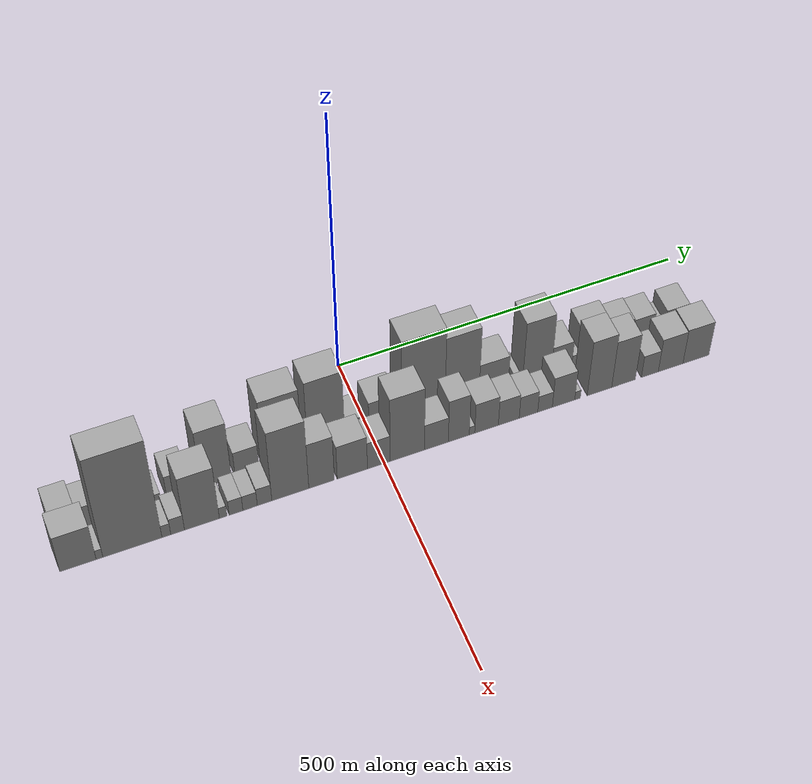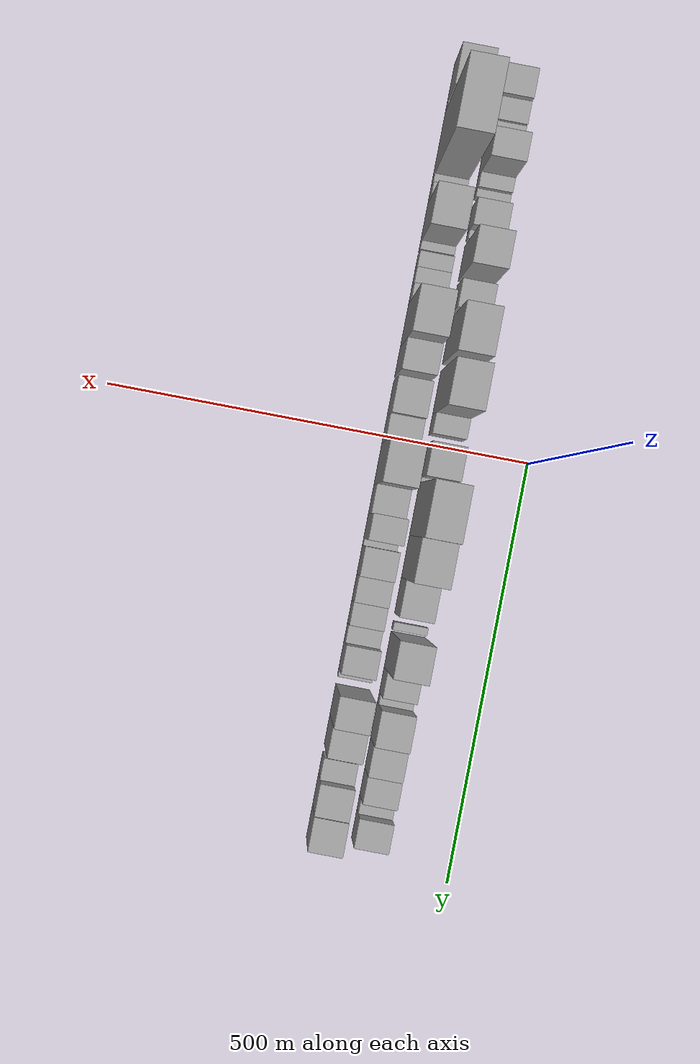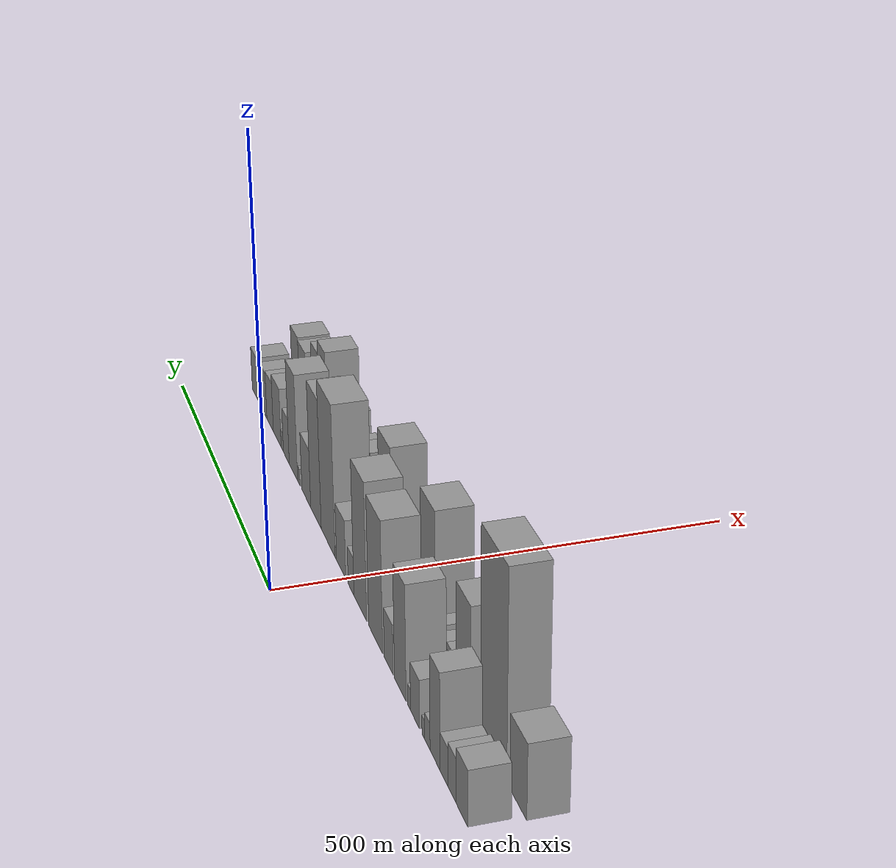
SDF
<sdf version="1.6">
 <world name="default">
  <scene>
   <sky><clouds><speed>12</speed></clouds></sky>
   <ambient>0.4 0.4 0.4 1</ambient>
   <background>0.7 0.7 0.7 1</background>
   <shadows>1</shadows>
  </scene>
  <gravity>0 0 -9.8066</gravity>
  <magnetic_field>6e-06 2.3e-05 -4.2e-05</magnetic_field>
  <physics default="0" name="default_physics" type="ode">
   <ode>
    <solver>
     <type>quick</type>
     <iters>10</iters>
     <sor>1.0</sor>
     <use_dynamic_moi_rescaling>0</use_dynamic_moi_rescaling>
    </solver>
    <constraints>
     <cfm>0</cfm>
     <erp>0.2</erp>
     <contact_max_correcting_vel>100</contact_max_correcting_vel>
     <contact_surface_layer>0.001</contact_surface_layer>
    </constraints>
   </ode>
   <max_step_size>0.004</max_step_size>
   <real_time_factor>1</real_time_factor>
   <real_time_update_rate>250</real_time_update_rate>
  </physics>
  <light name="sun" type="directional">
   <pose>0 0 10 0 0 0</pose>
   <diffuse>0.8 0.8 0.8 1</diffuse>
   <specular>0.2 0.2 0.2 1</specular>
   <attenuation>
    <range>1000</range>
    <constant>0.9</constant>
    <linear>0.01</linear>
    <quadratic>0.001</quadratic>
   </attenuation>
   <direction>-0.5 0.1 -0.9</direction>
  </light>
  <model name="building_1">
   <static>1</static>
   <pose>100.0000 -420.6993 0 0.000000 0.000000 0.000000</pose>
   <link name="link">
    <pose>0 0 30.00 0 0 0</pose>
    <collision name="collision"><geometry><box><size>40.0000 34.6014 60.0000</size></box></geometry></collision>
    <visual name="visual">
     <cast_shadows>0</cast_shadows>
     <geometry><box><size>40.0000 34.6014 60.0000</size></box></geometry>
     <material>
      <script>
       <uri>model://grey_wall/materials/scripts</uri>
       <uri>model://grey_wall/materials/textures</uri>
       <name>vrc/grey_wall</name>
      </script>
     </material>
    </visual>
   </link>
  </model>
  <model name="building_2">
   <static>1</static>
   <pose>100.0000 -389.9462 0 0.000000 0.000000 0.000000</pose>
   <link name="link">
    <pose>0 0 24.00 0 0 0</pose>
    <collision name="collision"><geometry><box><size>40.0000 26.9047 48.0000</size></box></geometry></collision>
    <visual name="visual">
     <cast_shadows>0</cast_shadows>
     <geometry><box><size>40.0000 26.9047 48.0000</size></box></geometry>
     <material>
      <script>
       <uri>model://grey_wall/materials/scripts</uri>
       <uri>model://grey_wall/materials/textures</uri>
       <name>vrc/grey_wall</name>
      </script>
     </material>
    </visual>
   </link>
  </model>
  <model name="building_3">
   <static>1</static>
   <pose>100.0000 -364.1504 0 0.000000 0.000000 0.000000</pose>
   <link name="link">
    <pose>0 0 21.00 0 0 0</pose>
    <collision name="collision"><geometry><box><size>40.0000 24.6869 42.0000</size></box></geometry></collision>
    <visual name="visual">
     <cast_shadows>0</cast_shadows>
     <geometry><box><size>40.0000 24.6869 42.0000</size></box></geometry>
     <material>
      <script>
       <uri>model://grey_wall/materials/scripts</uri>
       <uri>model://grey_wall/materials/textures</uri>
       <name>vrc/grey_wall</name>
      </script>
     </material>
    </visual>
   </link>
  </model>
  <model name="building_4">
   <static>1</static>
   <pose>100.0000 -335.4074 0 0.000000 0.000000 0.000000</pose>
   <link name="link">
    <pose>0 0 52.50 0 0 0</pose>
    <collision name="collision"><geometry><box><size>40.0000 32.7992 105.0000</size></box></geometry></collision>
    <visual name="visual">
     <cast_shadows>0</cast_shadows>
     <geometry><box><size>40.0000 32.7992 105.0000</size></box></geometry>
     <material>
      <script>
       <uri>model://grey_wall/materials/scripts</uri>
       <uri>model://grey_wall/materials/textures</uri>
       <name>vrc/grey_wall</name>
      </script>
     </material>
    </visual>
   </link>
  </model>
  <model name="building_5">
   <static>1</static>
   <pose>100.0000 -310.2377 0 0.000000 0.000000 0.000000</pose>
   <link name="link">
    <pose>0 0 15.00 0 0 0</pose>
    <collision name="collision"><geometry><box><size>40.0000 17.5402 30.0000</size></box></geometry></collision>
    <visual name="visual">
     <cast_shadows>0</cast_shadows>
     <geometry><box><size>40.0000 17.5402 30.0000</size></box></geometry>
     <material>
      <script>
       <uri>model://grey_wall/materials/scripts</uri>
       <uri>model://grey_wall/materials/textures</uri>
       <name>vrc/grey_wall</name>
      </script>
     </material>
    </visual>
   </link>
  </model>
  <model name="building_6">
   <static>1</static>
   <pose>100.0000 -296.6024 0 0.000000 0.000000 0.000000</pose>
   <link name="link">
    <pose>0 0 10.50 0 0 0</pose>
    <collision name="collision"><geometry><box><size>40.0000 9.7303 21.0000</size></box></geometry></collision>
    <visual name="visual">
     <cast_shadows>0</cast_shadows>
     <geometry><box><size>40.0000 9.7303 21.0000</size></box></geometry>
     <material>
      <script>
       <uri>model://grey_wall/materials/scripts</uri>
       <uri>model://grey_wall/materials/textures</uri>
       <name>vrc/grey_wall</name>
      </script>
     </material>
    </visual>
   </link>
  </model>
  <model name="building_7">
   <static>1</static>
   <pose>100.0000 -267.9709 0 0.000000 0.000000 0.000000</pose>
   <link name="link">
    <pose>0 0 27.00 0 0 0</pose>
    <collision name="collision"><geometry><box><size>40.0000 31.5327 54.0000</size></box></geometry></collision>
    <visual name="visual">
     <cast_shadows>0</cast_shadows>
     <geometry><box><size>40.0000 31.5327 54.0000</size></box></geometry>
     <material>
      <script>
       <uri>model://grey_wall/materials/scripts</uri>
       <uri>model://grey_wall/materials/textures</uri>
       <name>vrc/grey_wall</name>
      </script>
     </material>
    </visual>
   </link>
  </model>
  <model name="building_8">
   <static>1</static>
   <pose>100.0000 -247.0384 0 0.000000 0.000000 0.000000</pose>
   <link name="link">
    <pose>0 0 12.00 0 0 0</pose>
    <collision name="collision"><geometry><box><size>40.0000 10.3322 24.0000</size></box></geometry></collision>
    <visual name="visual">
     <cast_shadows>0</cast_shadows>
     <geometry><box><size>40.0000 10.3322 24.0000</size></box></geometry>
     <material>
      <script>
       <uri>model://grey_wall/materials/scripts</uri>
       <uri>model://grey_wall/materials/textures</uri>
       <name>vrc/grey_wall</name>
      </script>
     </material>
    </visual>
   </link>
  </model>
  <model name="building_9">
   <static>1</static>
   <pose>100.0000 -215.8633 0 0.000000 0.000000 0.000000</pose>
   <link name="link">
    <pose>0 0 64.50 0 0 0</pose>
    <collision name="collision"><geometry><box><size>40.0000 42.0181 129.0000</size></box></geometry></collision>
    <visual name="visual">
     <cast_shadows>0</cast_shadows>
     <geometry><box><size>40.0000 42.0181 129.0000</size></box></geometry>
     <material>
      <script>
       <uri>model://grey_wall/materials/scripts</uri>
       <uri>model://grey_wall/materials/textures</uri>
       <name>vrc/grey_wall</name>
      </script>
     </material>
    </visual>
   </link>
  </model>
  <model name="building_10">
   <static>1</static>
   <pose>100.0000 -173.1495 0 0.000000 0.000000 0.000000</pose>
   <link name="link">
    <pose>0 0 28.50 0 0 0</pose>
    <collision name="collision"><geometry><box><size>40.0000 33.4096 57.0000</size></box></geometry></collision>
    <visual name="visual">
     <cast_shadows>0</cast_shadows>
     <geometry><box><size>40.0000 33.4096 57.0000</size></box></geometry>
     <material>
      <script>
       <uri>model://grey_wall/materials/scripts</uri>
       <uri>model://grey_wall/materials/textures</uri>
       <name>vrc/grey_wall</name>
      </script>
     </material>
    </visual>
   </link>
  </model>
  <model name="building_11">
   <static>1</static>
   <pose>100.0000 -123.2199 0 0.000000 0.000000 0.000000</pose>
   <link name="link">
    <pose>0 0 75.00 0 0 0</pose>
    <collision name="collision"><geometry><box><size>40.0000 54.4495 150.0000</size></box></geometry></collision>
    <visual name="visual">
     <cast_shadows>0</cast_shadows>
     <geometry><box><size>40.0000 54.4495 150.0000</size></box></geometry>
     <material>
      <script>
       <uri>model://grey_wall/materials/scripts</uri>
       <uri>model://grey_wall/materials/textures</uri>
       <name>vrc/grey_wall</name>
      </script>
     </material>
    </visual>
   </link>
  </model>
  <model name="building_12">
   <static>1</static>
   <pose>100.0000 -61.9617 0 0.000000 0.000000 0.000000</pose>
   <link name="link">
    <pose>0 0 79.50 0 0 0</pose>
    <collision name="collision"><geometry><box><size>40.0000 52.0667 159.0000</size></box></geometry></collision>
    <visual name="visual">
     <cast_shadows>0</cast_shadows>
     <geometry><box><size>40.0000 52.0667 159.0000</size></box></geometry>
     <material>
      <script>
       <uri>model://grey_wall/materials/scripts</uri>
       <uri>model://grey_wall/materials/textures</uri>
       <name>vrc/grey_wall</name>
      </script>
     </material>
    </visual>
   </link>
  </model>
  <model name="building_13">
   <static>1</static>
   <pose>100.0000 -23.7251 0 0.000000 0.000000 0.000000</pose>
   <link name="link">
    <pose>0 0 22.50 0 0 0</pose>
    <collision name="collision"><geometry><box><size>40.0000 24.4066 45.0000</size></box></geometry></collision>
    <visual name="visual">
     <cast_shadows>0</cast_shadows>
     <geometry><box><size>40.0000 24.4066 45.0000</size></box></geometry>
     <material>
      <script>
       <uri>model://grey_wall/materials/scripts</uri>
       <uri>model://grey_wall/materials/textures</uri>
       <name>vrc/grey_wall</name>
      </script>
     </material>
    </visual>
   </link>
  </model>
  <model name="building_14">
   <static>1</static>
   <pose>100.0000 18.4585 0 0.000000 0.000000 0.000000</pose>
   <link name="link">
    <pose>0 0 34.50 0 0 0</pose>
    <collision name="collision"><geometry><box><size>40.0000 39.9605 69.0000</size></box></geometry></collision>
    <visual name="visual">
     <cast_shadows>0</cast_shadows>
     <geometry><box><size>40.0000 39.9605 69.0000</size></box></geometry>
     <material>
      <script>
       <uri>model://grey_wall/materials/scripts</uri>
       <uri>model://grey_wall/materials/textures</uri>
       <name>vrc/grey_wall</name>
      </script>
     </material>
    </visual>
   </link>
  </model>
  <model name="building_15">
   <static>1</static>
   <pose>100.0000 41.6626 0 0.000000 0.000000 0.000000</pose>
   <link name="link">
    <pose>0 0 7.50 0 0 0</pose>
    <collision name="collision"><geometry><box><size>40.0000 6.4477 15.0000</size></box></geometry></collision>
    <visual name="visual">
     <cast_shadows>0</cast_shadows>
     <geometry><box><size>40.0000 6.4477 15.0000</size></box></geometry>
     <material>
      <script>
       <uri>model://grey_wall/materials/scripts</uri>
       <uri>model://grey_wall/materials/textures</uri>
       <name>vrc/grey_wall</name>
      </script>
     </material>
    </visual>
   </link>
  </model>
  <model name="building_16">
   <static>1</static>
   <pose>100.0000 76.2940 0 0.000000 0.000000 0.000000</pose>
   <link name="link">
    <pose>0 0 90.00 0 0 0</pose>
    <collision name="collision"><geometry><box><size>40.0000 62.8152 180.0000</size></box></geometry></collision>
    <visual name="visual">
     <cast_shadows>0</cast_shadows>
     <geometry><box><size>40.0000 62.8152 180.0000</size></box></geometry>
     <material>
      <script>
       <uri>model://grey_wall/materials/scripts</uri>
       <uri>model://grey_wall/materials/textures</uri>
       <name>vrc/grey_wall</name>
      </script>
     </material>
    </visual>
   </link>
  </model>
  <model name="building_17">
   <static>1</static>
   <pose>100.0000 132.5691 0 0.000000 0.000000 0.000000</pose>
   <link name="link">
    <pose>0 0 78.00 0 0 0</pose>
    <collision name="collision"><geometry><box><size>40.0000 49.7349 156.0000</size></box></geometry></collision>
    <visual name="visual">
     <cast_shadows>0</cast_shadows>
     <geometry><box><size>40.0000 49.7349 156.0000</size></box></geometry>
     <material>
      <script>
       <uri>model://grey_wall/materials/scripts</uri>
       <uri>model://grey_wall/materials/textures</uri>
       <name>vrc/grey_wall</name>
      </script>
     </material>
    </visual>
   </link>
  </model>
  <model name="building_18">
   <static>1</static>
   <pose>100.0000 178.9139 0 0.000000 0.000000 0.000000</pose>
   <link name="link">
    <pose>0 0 36.00 0 0 0</pose>
    <collision name="collision"><geometry><box><size>40.0000 42.9548 72.0000</size></box></geometry></collision>
    <visual name="visual">
     <cast_shadows>0</cast_shadows>
     <geometry><box><size>40.0000 42.9548 72.0000</size></box></geometry>
     <material>
      <script>
       <uri>model://grey_wall/materials/scripts</uri>
       <uri>model://grey_wall/materials/textures</uri>
       <name>vrc/grey_wall</name>
      </script>
     </material>
    </visual>
   </link>
  </model>
  <model name="building_19">
   <static>1</static>
   <pose>100.0000 214.0822 0 0.000000 0.000000 0.000000</pose>
   <link name="link">
    <pose>0 0 10.50 0 0 0</pose>
    <collision name="collision"><geometry><box><size>40.0000 9.3818 21.0000</size></box></geometry></collision>
    <visual name="visual">
     <cast_shadows>0</cast_shadows>
     <geometry><box><size>40.0000 9.3818 21.0000</size></box></geometry>
     <material>
      <script>
       <uri>model://grey_wall/materials/scripts</uri>
       <uri>model://grey_wall/materials/textures</uri>
       <name>vrc/grey_wall</name>
      </script>
     </material>
    </visual>
   </link>
  </model>
  <model name="building_20">
   <static>1</static>
   <pose>100.0000 243.0363 0 0.000000 0.000000 0.000000</pose>
   <link name="link">
    <pose>0 0 66.00 0 0 0</pose>
    <collision name="collision"><geometry><box><size>40.0000 42.5264 132.0000</size></box></geometry></collision>
    <visual name="visual">
     <cast_shadows>0</cast_shadows>
     <geometry><box><size>40.0000 42.5264 132.0000</size></box></geometry>
     <material>
      <script>
       <uri>model://grey_wall/materials/scripts</uri>
       <uri>model://grey_wall/materials/textures</uri>
       <name>vrc/grey_wall</name>
      </script>
     </material>
    </visual>
   </link>
  </model>
  <model name="building_21">
   <static>1</static>
   <pose>100.0000 279.5815 0 0.000000 0.000000 0.000000</pose>
   <link name="link">
    <pose>0 0 28.50 0 0 0</pose>
    <collision name="collision"><geometry><box><size>40.0000 30.5641 57.0000</size></box></geometry></collision>
    <visual name="visual">
     <cast_shadows>0</cast_shadows>
     <geometry><box><size>40.0000 30.5641 57.0000</size></box></geometry>
     <material>
      <script>
       <uri>model://grey_wall/materials/scripts</uri>
       <uri>model://grey_wall/materials/textures</uri>
       <name>vrc/grey_wall</name>
      </script>
     </material>
    </visual>
   </link>
  </model>
  <model name="building_22">
   <static>1</static>
   <pose>100.0000 300.7286 0 0.000000 0.000000 0.000000</pose>
   <link name="link">
    <pose>0 0 12.00 0 0 0</pose>
    <collision name="collision"><geometry><box><size>40.0000 11.7300 24.0000</size></box></geometry></collision>
    <visual name="visual">
     <cast_shadows>0</cast_shadows>
     <geometry><box><size>40.0000 11.7300 24.0000</size></box></geometry>
     <material>
      <script>
       <uri>model://grey_wall/materials/scripts</uri>
       <uri>model://grey_wall/materials/textures</uri>
       <name>vrc/grey_wall</name>
      </script>
     </material>
    </visual>
   </link>
  </model>
  <model name="building_23">
   <static>1</static>
   <pose>100.0000 327.6474 0 0.000000 0.000000 0.000000</pose>
   <link name="link">
    <pose>0 0 37.50 0 0 0</pose>
    <collision name="collision"><geometry><box><size>40.0000 42.1075 75.0000</size></box></geometry></collision>
    <visual name="visual">
     <cast_shadows>0</cast_shadows>
     <geometry><box><size>40.0000 42.1075 75.0000</size></box></geometry>
     <material>
      <script>
       <uri>model://grey_wall/materials/scripts</uri>
       <uri>model://grey_wall/materials/textures</uri>
       <name>vrc/grey_wall</name>
      </script>
     </material>
    </visual>
   </link>
  </model>
  <model name="building_24">
   <static>1</static>
   <pose>100.0000 366.6639 0 0.000000 0.000000 0.000000</pose>
   <link name="link">
    <pose>0 0 31.50 0 0 0</pose>
    <collision name="collision"><geometry><box><size>40.0000 35.9255 63.0000</size></box></geometry></collision>
    <visual name="visual">
     <cast_shadows>0</cast_shadows>
     <geometry><box><size>40.0000 35.9255 63.0000</size></box></geometry>
     <material>
      <script>
       <uri>model://grey_wall/materials/scripts</uri>
       <uri>model://grey_wall/materials/textures</uri>
       <name>vrc/grey_wall</name>
      </script>
     </material>
    </visual>
   </link>
  </model>
  <model name="building_25">
   <static>1</static>
   <pose>100.0000 400.5764 0 0.000000 0.000000 0.000000</pose>
   <link name="link">
    <pose>0 0 30.00 0 0 0</pose>
    <collision name="collision"><geometry><box><size>40.0000 31.8995 60.0000</size></box></geometry></collision>
    <visual name="visual">
     <cast_shadows>0</cast_shadows>
     <geometry><box><size>40.0000 31.8995 60.0000</size></box></geometry>
     <material>
      <script>
       <uri>model://grey_wall/materials/scripts</uri>
       <uri>model://grey_wall/materials/textures</uri>
       <name>vrc/grey_wall</name>
      </script>
     </material>
    </visual>
   </link>
  </model>
  <model name="building_26">
   <static>1</static>
   <pose>100.0000 425.1139 0 0.000000 0.000000 0.000000</pose>
   <link name="link">
    <pose>0 0 15.00 0 0 0</pose>
    <collision name="collision"><geometry><box><size>40.0000 17.1756 30.0000</size></box></geometry></collision>
    <visual name="visual">
     <cast_shadows>0</cast_shadows>
     <geometry><box><size>40.0000 17.1756 30.0000</size></box></geometry>
     <material>
      <script>
       <uri>model://grey_wall/materials/scripts</uri>
       <uri>model://grey_wall/materials/textures</uri>
       <name>vrc/grey_wall</name>
      </script>
     </material>
    </visual>
   </link>
  </model>
  <model name="building_27">
   <static>1</static>
   <pose>100.0000 450.7416 0 0.000000 0.000000 0.000000</pose>
   <link name="link">
    <pose>0 0 28.50 0 0 0</pose>
    <collision name="collision"><geometry><box><size>40.0000 34.0799 57.0000</size></box></geometry></collision>
    <visual name="visual">
     <cast_shadows>0</cast_shadows>
     <geometry><box><size>40.0000 34.0799 57.0000</size></box></geometry>
     <material>
      <script>
       <uri>model://grey_wall/materials/scripts</uri>
       <uri>model://grey_wall/materials/textures</uri>
       <name>vrc/grey_wall</name>
      </script>
     </material>
    </visual>
   </link>
  </model>
  <model name="building_28">
   <static>1</static>
   <pose>152.0000 -419.8941 0 0.000000 0.000000 0.000000</pose>
   <link name="link">
    <pose>0 0 40.50 0 0 0</pose>
    <collision name="collision"><geometry><box><size>40.0000 48.2119 81.0000</size></box></geometry></collision>
    <visual name="visual">
     <cast_shadows>0</cast_shadows>
     <geometry><box><size>40.0000 48.2119 81.0000</size></box></geometry>
     <material>
      <script>
       <uri>model://grey_wall/materials/scripts</uri>
       <uri>model://grey_wall/materials/textures</uri>
       <name>vrc/grey_wall</name>
      </script>
     </material>
    </visual>
   </link>
  </model>
  <model name="building_29">
   <static>1</static>
   <pose>152.0000 -391.3192 0 0.000000 0.000000 0.000000</pose>
   <link name="link">
    <pose>0 0 10.50 0 0 0</pose>
    <collision name="collision"><geometry><box><size>40.0000 8.9380 21.0000</size></box></geometry></collision>
    <visual name="visual">
     <cast_shadows>0</cast_shadows>
     <geometry><box><size>40.0000 8.9380 21.0000</size></box></geometry>
     <material>
      <script>
       <uri>model://grey_wall/materials/scripts</uri>
       <uri>model://grey_wall/materials/textures</uri>
       <name>vrc/grey_wall</name>
      </script>
     </material>
    </visual>
   </link>
  </model>
  <model name="building_30">
   <static>1</static>
   <pose>152.0000 -347.2397 0 0.000000 0.000000 0.000000</pose>
   <link name="link">
    <pose>0 0 112.50 0 0 0</pose>
    <collision name="collision"><geometry><box><size>40.0000 79.2209 225.0000</size></box></geometry></collision>
    <visual name="visual">
     <cast_shadows>0</cast_shadows>
     <geometry><box><size>40.0000 79.2209 225.0000</size></box></geometry>
     <material>
      <script>
       <uri>model://grey_wall/materials/scripts</uri>
       <uri>model://grey_wall/materials/textures</uri>
       <name>vrc/grey_wall</name>
      </script>
     </material>
    </visual>
   </link>
  </model>
  <model name="building_31">
   <static>1</static>
   <pose>152.0000 -301.6274 0 0.000000 0.000000 0.000000</pose>
   <link name="link">
    <pose>0 0 13.50 0 0 0</pose>
    <collision name="collision"><geometry><box><size>40.0000 12.0037 27.0000</size></box></geometry></collision>
    <visual name="visual">
     <cast_shadows>0</cast_shadows>
     <geometry><box><size>40.0000 12.0037 27.0000</size></box></geometry>
     <material>
      <script>
       <uri>model://grey_wall/materials/scripts</uri>
       <uri>model://grey_wall/materials/textures</uri>
       <name>vrc/grey_wall</name>
      </script>
     </material>
    </visual>
   </link>
  </model>
  <model name="building_32">
   <static>1</static>
   <pose>152.0000 -286.3250 0 0.000000 0.000000 0.000000</pose>
   <link name="link">
    <pose>0 0 18.00 0 0 0</pose>
    <collision name="collision"><geometry><box><size>40.0000 18.6010 36.0000</size></box></geometry></collision>
    <visual name="visual">
     <cast_shadows>0</cast_shadows>
     <geometry><box><size>40.0000 18.6010 36.0000</size></box></geometry>
     <material>
      <script>
       <uri>model://grey_wall/materials/scripts</uri>
       <uri>model://grey_wall/materials/textures</uri>
       <name>vrc/grey_wall</name>
      </script>
     </material>
    </visual>
   </link>
  </model>
  <model name="building_33">
   <static>1</static>
   <pose>152.0000 -253.3515 0 0.000000 0.000000 0.000000</pose>
   <link name="link">
    <pose>0 0 60.00 0 0 0</pose>
    <collision name="collision"><geometry><box><size>40.0000 47.3461 120.0000</size></box></geometry></collision>
    <visual name="visual">
     <cast_shadows>0</cast_shadows>
     <geometry><box><size>40.0000 47.3461 120.0000</size></box></geometry>
     <material>
      <script>
       <uri>model://grey_wall/materials/scripts</uri>
       <uri>model://grey_wall/materials/textures</uri>
       <name>vrc/grey_wall</name>
      </script>
     </material>
    </visual>
   </link>
  </model>
  <model name="building_34">
   <static>1</static>
   <pose>152.0000 -224.4134 0 0.000000 0.000000 0.000000</pose>
   <link name="link">
    <pose>0 0 12.00 0 0 0</pose>
    <collision name="collision"><geometry><box><size>40.0000 10.5301 24.0000</size></box></geometry></collision>
    <visual name="visual">
     <cast_shadows>0</cast_shadows>
     <geometry><box><size>40.0000 10.5301 24.0000</size></box></geometry>
     <material>
      <script>
       <uri>model://grey_wall/materials/scripts</uri>
       <uri>model://grey_wall/materials/textures</uri>
       <name>vrc/grey_wall</name>
      </script>
     </material>
    </visual>
   </link>
  </model>
  <model name="building_35">
   <static>1</static>
   <pose>152.0000 -206.7561 0 0.000000 0.000000 0.000000</pose>
   <link name="link">
    <pose>0 0 16.50 0 0 0</pose>
    <collision name="collision"><geometry><box><size>40.0000 18.7844 33.0000</size></box></geometry></collision>
    <visual name="visual">
     <cast_shadows>0</cast_shadows>
     <geometry><box><size>40.0000 18.7844 33.0000</size></box></geometry>
     <material>
      <script>
       <uri>model://grey_wall/materials/scripts</uri>
       <uri>model://grey_wall/materials/textures</uri>
       <name>vrc/grey_wall</name>
      </script>
     </material>
    </visual>
   </link>
  </model>
  <model name="building_36">
   <static>1</static>
   <pose>152.0000 -187.4967 0 0.000000 0.000000 0.000000</pose>
   <link name="link">
    <pose>0 0 16.50 0 0 0</pose>
    <collision name="collision"><geometry><box><size>40.0000 19.7345 33.0000</size></box></geometry></collision>
    <visual name="visual">
     <cast_shadows>0</cast_shadows>
     <geometry><box><size>40.0000 19.7345 33.0000</size></box></geometry>
     <material>
      <script>
       <uri>model://grey_wall/materials/scripts</uri>
       <uri>model://grey_wall/materials/textures</uri>
       <name>vrc/grey_wall</name>
      </script>
     </material>
    </visual>
   </link>
  </model>
  <model name="building_37">
   <static>1</static>
   <pose>152.0000 -167.5568 0 0.000000 0.000000 0.000000</pose>
   <link name="link">
    <pose>0 0 19.50 0 0 0</pose>
    <collision name="collision"><geometry><box><size>40.0000 20.1453 39.0000</size></box></geometry></collision>
    <visual name="visual">
     <cast_shadows>0</cast_shadows>
     <geometry><box><size>40.0000 20.1453 39.0000</size></box></geometry>
     <material>
      <script>
       <uri>model://grey_wall/materials/scripts</uri>
       <uri>model://grey_wall/materials/textures</uri>
       <name>vrc/grey_wall</name>
      </script>
     </material>
    </visual>
   </link>
  </model>
  <model name="building_38">
   <static>1</static>
   <pose>152.0000 -131.8055 0 0.000000 0.000000 0.000000</pose>
   <link name="link">
    <pose>0 0 78.00 0 0 0</pose>
    <collision name="collision"><geometry><box><size>40.0000 51.3573 156.0000</size></box></geometry></collision>
    <visual name="visual">
     <cast_shadows>0</cast_shadows>
     <geometry><box><size>40.0000 51.3573 156.0000</size></box></geometry>
     <material>
      <script>
       <uri>model://grey_wall/materials/scripts</uri>
       <uri>model://grey_wall/materials/textures</uri>
       <name>vrc/grey_wall</name>
      </script>
     </material>
    </visual>
   </link>
  </model>
  <model name="building_39">
   <static>1</static>
   <pose>152.0000 -88.2568 0 0.000000 0.000000 0.000000</pose>
   <link name="link">
    <pose>0 0 51.00 0 0 0</pose>
    <collision name="collision"><geometry><box><size>40.0000 35.7400 102.0000</size></box></geometry></collision>
    <visual name="visual">
     <cast_shadows>0</cast_shadows>
     <geometry><box><size>40.0000 35.7400 102.0000</size></box></geometry>
     <material>
      <script>
       <uri>model://grey_wall/materials/scripts</uri>
       <uri>model://grey_wall/materials/textures</uri>
       <name>vrc/grey_wall</name>
      </script>
     </material>
    </visual>
   </link>
  </model>
  <model name="building_40">
   <static>1</static>
   <pose>152.0000 -45.1915 0 0.000000 0.000000 0.000000</pose>
   <link name="link">
    <pose>0 0 37.50 0 0 0</pose>
    <collision name="collision"><geometry><box><size>40.0000 42.3907 75.0000</size></box></geometry></collision>
    <visual name="visual">
     <cast_shadows>0</cast_shadows>
     <geometry><box><size>40.0000 42.3907 75.0000</size></box></geometry>
     <material>
      <script>
       <uri>model://grey_wall/materials/scripts</uri>
       <uri>model://grey_wall/materials/textures</uri>
       <name>vrc/grey_wall</name>
      </script>
     </material>
    </visual>
   </link>
  </model>
  <model name="building_41">
   <static>1</static>
   <pose>152.0000 -7.8814 0 0.000000 0.000000 0.000000</pose>
   <link name="link">
    <pose>0 0 30.00 0 0 0</pose>
    <collision name="collision"><geometry><box><size>40.0000 32.2295 60.0000</size></box></geometry></collision>
    <visual name="visual">
     <cast_shadows>0</cast_shadows>
     <geometry><box><size>40.0000 32.2295 60.0000</size></box></geometry>
     <material>
      <script>
       <uri>model://grey_wall/materials/scripts</uri>
       <uri>model://grey_wall/materials/textures</uri>
       <name>vrc/grey_wall</name>
      </script>
     </material>
    </visual>
   </link>
  </model>
  <model name="building_42">
   <static>1</static>
   <pose>152.0000 32.6572 0 0.000000 0.000000 0.000000</pose>
   <link name="link">
    <pose>0 0 70.50 0 0 0</pose>
    <collision name="collision"><geometry><box><size>40.0000 48.8478 141.0000</size></box></geometry></collision>
    <visual name="visual">
     <cast_shadows>0</cast_shadows>
     <geometry><box><size>40.0000 48.8478 141.0000</size></box></geometry>
     <material>
      <script>
       <uri>model://grey_wall/materials/scripts</uri>
       <uri>model://grey_wall/materials/textures</uri>
       <name>vrc/grey_wall</name>
      </script>
     </material>
    </visual>
   </link>
  </model>
  <model name="building_43">
   <static>1</static>
   <pose>152.0000 74.1489 0 0.000000 0.000000 0.000000</pose>
   <link name="link">
    <pose>0 0 28.50 0 0 0</pose>
    <collision name="collision"><geometry><box><size>40.0000 34.1357 57.0000</size></box></geometry></collision>
    <visual name="visual">
     <cast_shadows>0</cast_shadows>
     <geometry><box><size>40.0000 34.1357 57.0000</size></box></geometry>
     <material>
      <script>
       <uri>model://grey_wall/materials/scripts</uri>
       <uri>model://grey_wall/materials/textures</uri>
       <name>vrc/grey_wall</name>
      </script>
     </material>
    </visual>
   </link>
  </model>
  <model name="building_44">
   <static>1</static>
   <pose>152.0000 106.3500 0 0.000000 0.000000 0.000000</pose>
   <link name="link">
    <pose>0 0 46.50 0 0 0</pose>
    <collision name="collision"><geometry><box><size>40.0000 30.2664 93.0000</size></box></geometry></collision>
    <visual name="visual">
     <cast_shadows>0</cast_shadows>
     <geometry><box><size>40.0000 30.2664 93.0000</size></box></geometry>
     <material>
      <script>
       <uri>model://grey_wall/materials/scripts</uri>
       <uri>model://grey_wall/materials/textures</uri>
       <name>vrc/grey_wall</name>
      </script>
     </material>
    </visual>
   </link>
  </model>
  <model name="building_45">
   <static>1</static>
   <pose>152.0000 125.4410 0 0.000000 0.000000 0.000000</pose>
   <link name="link">
    <pose>0 0 9.00 0 0 0</pose>
    <collision name="collision"><geometry><box><size>40.0000 7.9155 18.0000</size></box></geometry></collision>
    <visual name="visual">
     <cast_shadows>0</cast_shadows>
     <geometry><box><size>40.0000 7.9155 18.0000</size></box></geometry>
     <material>
      <script>
       <uri>model://grey_wall/materials/scripts</uri>
       <uri>model://grey_wall/materials/textures</uri>
       <name>vrc/grey_wall</name>
      </script>
     </material>
    </visual>
   </link>
  </model>
  <model name="building_46">
   <static>1</static>
   <pose>152.0000 146.5405 0 0.000000 0.000000 0.000000</pose>
   <link name="link">
    <pose>0 0 33.00 0 0 0</pose>
    <collision name="collision"><geometry><box><size>40.0000 34.2835 66.0000</size></box></geometry></collision>
    <visual name="visual">
     <cast_shadows>0</cast_shadows>
     <geometry><box><size>40.0000 34.2835 66.0000</size></box></geometry>
     <material>
      <script>
       <uri>model://grey_wall/materials/scripts</uri>
       <uri>model://grey_wall/materials/textures</uri>
       <name>vrc/grey_wall</name>
      </script>
     </material>
    </visual>
   </link>
  </model>
  <model name="building_47">
   <static>1</static>
   <pose>152.0000 178.9067 0 0.000000 0.000000 0.000000</pose>
   <link name="link">
    <pose>0 0 27.00 0 0 0</pose>
    <collision name="collision"><geometry><box><size>40.0000 30.4488 54.0000</size></box></geometry></collision>
    <visual name="visual">
     <cast_shadows>0</cast_shadows>
     <geometry><box><size>40.0000 30.4488 54.0000</size></box></geometry>
     <material>
      <script>
       <uri>model://grey_wall/materials/scripts</uri>
       <uri>model://grey_wall/materials/textures</uri>
       <name>vrc/grey_wall</name>
      </script>
     </material>
    </visual>
   </link>
  </model>
  <model name="building_48">
   <static>1</static>
   <pose>152.0000 207.6680 0 0.000000 0.000000 0.000000</pose>
   <link name="link">
    <pose>0 0 24.00 0 0 0</pose>
    <collision name="collision"><geometry><box><size>40.0000 27.0739 48.0000</size></box></geometry></collision>
    <visual name="visual">
     <cast_shadows>0</cast_shadows>
     <geometry><box><size>40.0000 27.0739 48.0000</size></box></geometry>
     <material>
      <script>
       <uri>model://grey_wall/materials/scripts</uri>
       <uri>model://grey_wall/materials/textures</uri>
       <name>vrc/grey_wall</name>
      </script>
     </material>
    </visual>
   </link>
  </model>
  <model name="building_49">
   <static>1</static>
   <pose>152.0000 231.9488 0 0.000000 0.000000 0.000000</pose>
   <link name="link">
    <pose>0 0 18.00 0 0 0</pose>
    <collision name="collision"><geometry><box><size>40.0000 21.4876 36.0000</size></box></geometry></collision>
    <visual name="visual">
     <cast_shadows>0</cast_shadows>
     <geometry><box><size>40.0000 21.4876 36.0000</size></box></geometry>
     <material>
      <script>
       <uri>model://grey_wall/materials/scripts</uri>
       <uri>model://grey_wall/materials/textures</uri>
       <name>vrc/grey_wall</name>
      </script>
     </material>
    </visual>
   </link>
  </model>
  <model name="building_50">
   <static>1</static>
   <pose>152.0000 259.2955 0 0.000000 0.000000 0.000000</pose>
   <link name="link">
    <pose>0 0 33.00 0 0 0</pose>
    <collision name="collision"><geometry><box><size>40.0000 33.2060 66.0000</size></box></geometry></collision>
    <visual name="visual">
     <cast_shadows>0</cast_shadows>
     <geometry><box><size>40.0000 33.2060 66.0000</size></box></geometry>
     <material>
      <script>
       <uri>model://grey_wall/materials/scripts</uri>
       <uri>model://grey_wall/materials/textures</uri>
       <name>vrc/grey_wall</name>
      </script>
     </material>
    </visual>
   </link>
  </model>
  <model name="building_51">
   <static>1</static>
   <pose>152.0000 280.0718 0 0.000000 0.000000 0.000000</pose>
   <link name="link">
    <pose>0 0 9.00 0 0 0</pose>
    <collision name="collision"><geometry><box><size>40.0000 8.3467 18.0000</size></box></geometry></collision>
    <visual name="visual">
     <cast_shadows>0</cast_shadows>
     <geometry><box><size>40.0000 8.3467 18.0000</size></box></geometry>
     <material>
      <script>
       <uri>model://grey_wall/materials/scripts</uri>
       <uri>model://grey_wall/materials/textures</uri>
       <name>vrc/grey_wall</name>
      </script>
     </material>
    </visual>
   </link>
  </model>
  <model name="building_52">
   <static>1</static>
   <pose>152.0000 312.4818 0 0.000000 0.000000 0.000000</pose>
   <link name="link">
    <pose>0 0 60.00 0 0 0</pose>
    <collision name="collision"><geometry><box><size>40.0000 36.4732 120.0000</size></box></geometry></collision>
    <visual name="visual">
     <cast_shadows>0</cast_shadows>
     <geometry><box><size>40.0000 36.4732 120.0000</size></box></geometry>
     <material>
      <script>
       <uri>model://grey_wall/materials/scripts</uri>
       <uri>model://grey_wall/materials/textures</uri>
       <name>vrc/grey_wall</name>
      </script>
     </material>
    </visual>
   </link>
  </model>
  <model name="building_53">
   <static>1</static>
   <pose>152.0000 348.4297 0 0.000000 0.000000 0.000000</pose>
   <link name="link">
    <pose>0 0 51.00 0 0 0</pose>
    <collision name="collision"><geometry><box><size>40.0000 35.4226 102.0000</size></box></geometry></collision>
    <visual name="visual">
     <cast_shadows>0</cast_shadows>
     <geometry><box><size>40.0000 35.4226 102.0000</size></box></geometry>
     <material>
      <script>
       <uri>model://grey_wall/materials/scripts</uri>
       <uri>model://grey_wall/materials/textures</uri>
       <name>vrc/grey_wall</name>
      </script>
     </material>
    </visual>
   </link>
  </model>
  <model name="building_54">
   <static>1</static>
   <pose>152.0000 387.8915 0 0.000000 0.000000 0.000000</pose>
   <link name="link">
    <pose>0 0 24.00 0 0 0</pose>
    <collision name="collision"><geometry><box><size>40.0000 25.5009 48.0000</size></box></geometry></collision>
    <visual name="visual">
     <cast_shadows>0</cast_shadows>
     <geometry><box><size>40.0000 25.5009 48.0000</size></box></geometry>
     <material>
      <script>
       <uri>model://grey_wall/materials/scripts</uri>
       <uri>model://grey_wall/materials/textures</uri>
       <name>vrc/grey_wall</name>
      </script>
     </material>
    </visual>
   </link>
  </model>
  <model name="building_55">
   <static>1</static>
   <pose>152.0000 419.2807 0 0.000000 0.000000 0.000000</pose>
   <link name="link">
    <pose>0 0 36.00 0 0 0</pose>
    <collision name="collision"><geometry><box><size>40.0000 37.2776 72.0000</size></box></geometry></collision>
    <visual name="visual">
     <cast_shadows>0</cast_shadows>
     <geometry><box><size>40.0000 37.2776 72.0000</size></box></geometry>
     <material>
      <script>
       <uri>model://grey_wall/materials/scripts</uri>
       <uri>model://grey_wall/materials/textures</uri>
       <name>vrc/grey_wall</name>
      </script>
     </material>
    </visual>
   </link>
  </model>
  <model name="building_56">
   <static>1</static>
   <pose>152.0000 457.6937 0 0.000000 0.000000 0.000000</pose>
   <link name="link">
    <pose>0 0 37.50 0 0 0</pose>
    <collision name="collision"><geometry><box><size>40.0000 39.5482 75.0000</size></box></geometry></collision>
    <visual name="visual">
     <cast_shadows>0</cast_shadows>
     <geometry><box><size>40.0000 39.5482 75.0000</size></box></geometry>
     <material>
      <script>
       <uri>model://grey_wall/materials/scripts</uri>
       <uri>model://grey_wall/materials/textures</uri>
       <name>vrc/grey_wall</name>
      </script>
     </material>
    </visual>
   </link>
  </model>
 </world>
</sdf>
